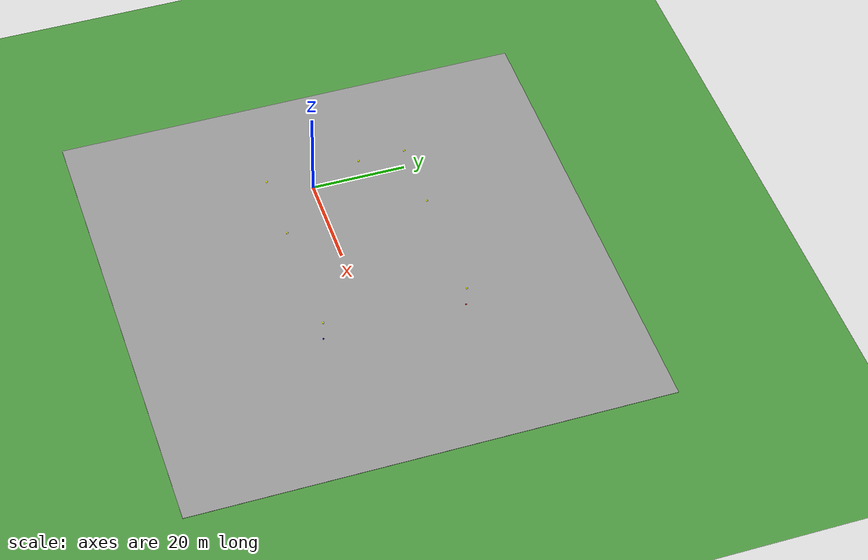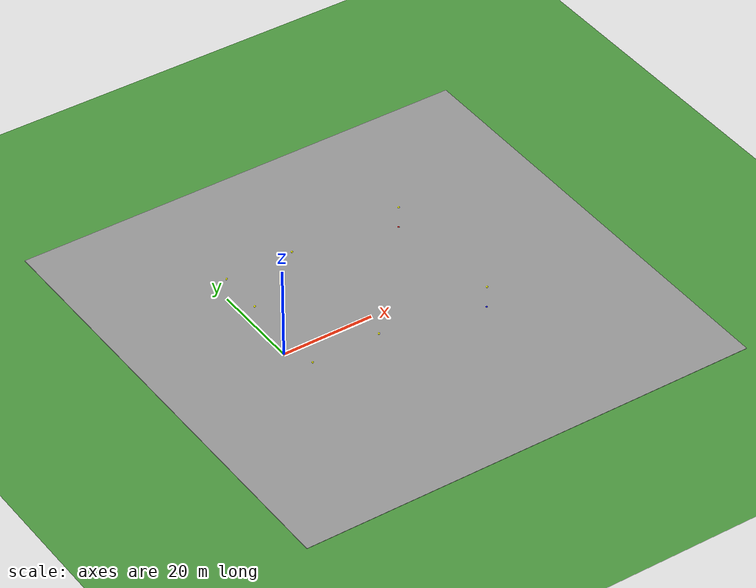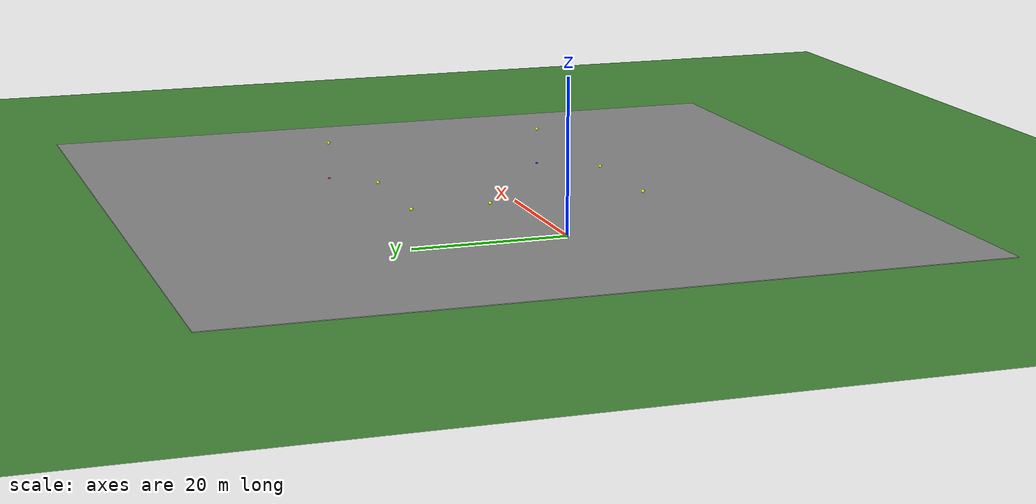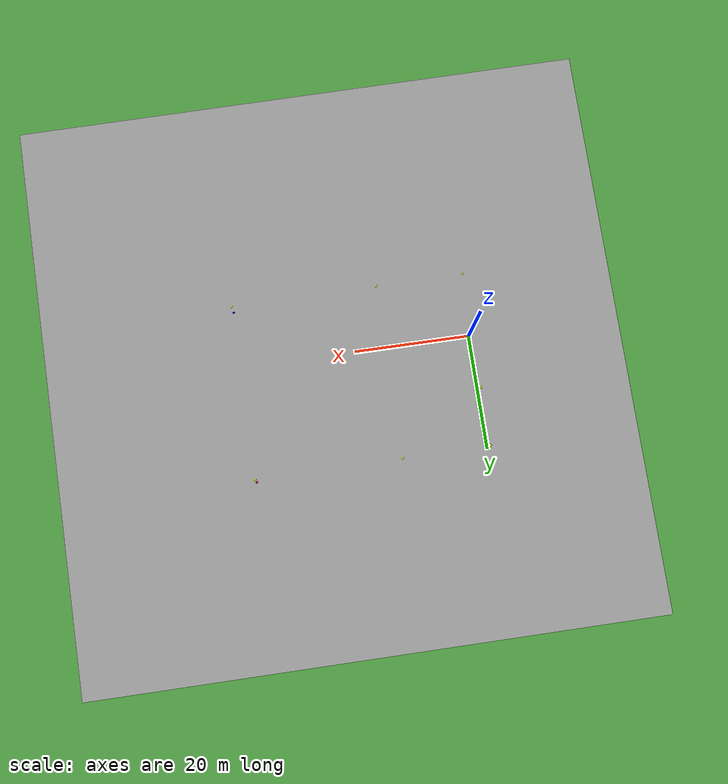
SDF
<sdf version="1.7">
 <world name="default">
  <physics type="ode">
   <ode>
    <solver>
     <type>quick</type>
     <iters>100</iters>
     <sor>1</sor>
     <use_dynamic_moi_rescaling>0</use_dynamic_moi_rescaling>
    </solver>
    <constraints>
     <cfm>0</cfm>
     <erp>0.9</erp>
     <contact_max_correcting_vel>0.1</contact_max_correcting_vel>
     <contact_surface_layer>0</contact_surface_layer>
    </constraints>
   </ode>
   <real_time_update_rate>-1</real_time_update_rate>
   <max_step_size>0.001</max_step_size>
   <real_time_factor>1</real_time_factor>
  </physics>
  <model name="ground_plane">
   <static>1</static>
   <link name="link">
    <collision name="collision">
     <geometry><plane><normal>0 0 1</normal><size>5000 5000</size></plane></geometry>
     <surface><friction><ode><mu>1</mu><mu2>1</mu2></ode></friction></surface>
    </collision>
    <visual name="grass">
     <pose>0 0 -0.1 0 -0 0</pose>
     <cast_shadows>0</cast_shadows>
     <geometry><plane><normal>0 0 1</normal><size>5000 5000</size></plane></geometry>
     <material>
      <script><uri>file://media/materials/scripts/gazebo.material</uri><name>Gazebo/Grass</name></script>
     </material>
    </visual>
   </link>
  </model>
  <light name="sun" type="directional">
   <visualize>false</visualize>
   <pose>0 0 10 0 -0 0</pose>
   <diffuse>0.8 0.8 0.8 1</diffuse>
   <specular>0.2 0.2 0.2 1</specular>
   <attenuation>
    <range>1000</range>
    <constant>0.9</constant>
    <linear>0.01</linear>
    <quadratic>0.001</quadratic>
   </attenuation>
   <direction>-0.5 0.1 -0.9</direction>
   <spot><inner_angle>0</inner_angle><outer_angle>0</outer_angle><falloff>0</falloff></spot>
  </light>
  <gravity>0 0 -9.8</gravity>
  <magnetic_field>6e-06 2.3e-05 -4.2e-05</magnetic_field>
  <atmosphere type="adiabatic"/>
  <scene><ambient>0.4 0.4 0.4 1</ambient><background>0.7 0.7 0.7 1</background><shadows>1</shadows></scene>
  <spherical_coordinates>
   <surface_model>EARTH_WGS84</surface_model>
   <latitude_deg>0</latitude_deg>
   <longitude_deg>0</longitude_deg>
   <elevation>0</elevation>
   <heading_deg>0</heading_deg>
  </spherical_coordinates>
  <model name="ground_plane_0">
   <static>1</static>
   <link name="link">
    <collision name="collision">
     <geometry><plane><normal>0 0 1</normal><size>100 100</size></plane></geometry>
     <surface>
      <contact><collide_bitmask>65535</collide_bitmask></contact>
      <friction><ode><mu>100</mu><mu2>50</mu2></ode></friction>
     </surface>
    </collision>
    <visual name="visual">
     <cast_shadows>0</cast_shadows>
     <geometry><plane><normal>0 0 1</normal><size>100 100</size></plane></geometry>
     <material>
      <script><uri>file://media/materials/scripts/gazebo.material</uri><name>Gazebo/Grey</name></script>
     </material>
    </visual>
   </link>
   <pose>23.7201 2.14936 0 0 -0 0</pose>
  </model>
  <model name="waypoints_0">
   <pose>40 -10 5 0 0 0</pose>
   <link name="link">
    <inertial>
     <mass>1</mass>
     <inertia><ixx>0.1</ixx></inertia>
     <inertia><ixy>0</ixy></inertia>
     <inertia><ixz>0</ixz></inertia>
     <inertia><iyy>0.1</iyy></inertia>
     <inertia><iyz>0</iyz></inertia>
     <inertia><izz>0.1</izz></inertia>
    </inertial>
    <gravity>0</gravity>
    <visual name="visual">
     <geometry><sphere><radius>0.2</radius></sphere></geometry>
     <material>
      <script><name>Gazebo/Grey</name><uri>file://media/materials/scripts/gazebo.material</uri></script>
      <shader type="pixel"><normal_map>__default__</normal_map></shader>
      <ambient>0.3 0.3 0.3 1</ambient>
      <diffuse>1.0 1.0 0.0 1</diffuse>
      <specular>0.01 0.01 0.01 1</specular>
      <emissive>0 0 0 1</emissive>
     </material>
     <transparency>0.05</transparency>
    </visual>
   </link>
   <static>0</static>
  </model>
  <model name="waypoints_1">
   <pose>15 -10 5 0 0 0</pose>
   <link name="link">
    <inertial>
     <mass>1</mass>
     <inertia><ixx>0.1</ixx></inertia>
     <inertia><ixy>0</ixy></inertia>
     <inertia><ixz>0</ixz></inertia>
     <inertia><iyy>0.1</iyy></inertia>
     <inertia><iyz>0</iyz></inertia>
     <inertia><izz>0.1</izz></inertia>
    </inertial>
    <gravity>0</gravity>
    <visual name="visual">
     <geometry><sphere><radius>0.2</radius></sphere></geometry>
     <material>
      <script><name>Gazebo/Grey</name><uri>file://media/materials/scripts/gazebo.material</uri></script>
      <shader type="pixel"><normal_map>__default__</normal_map></shader>
      <ambient>0.3 0.3 0.3 1</ambient>
      <diffuse>1.0 1.0 0.0 1</diffuse>
      <specular>0.01 0.01 0.01 1</specular>
      <emissive>0 0 0 1</emissive>
     </material>
     <transparency>0.05</transparency>
    </visual>
   </link>
   <static>0</static>
  </model>
  <model name="waypoints_2">
   <pose>0 -10 5 0 0 0</pose>
   <link name="link">
    <inertial>
     <mass>1</mass>
     <inertia><ixx>0.1</ixx></inertia>
     <inertia><ixy>0</ixy></inertia>
     <inertia><ixz>0</ixz></inertia>
     <inertia><iyy>0.1</iyy></inertia>
     <inertia><iyz>0</iyz></inertia>
     <inertia><izz>0.1</izz></inertia>
    </inertial>
    <gravity>0</gravity>
    <visual name="visual">
     <geometry><sphere><radius>0.2</radius></sphere></geometry>
     <material>
      <script><name>Gazebo/Grey</name><uri>file://media/materials/scripts/gazebo.material</uri></script>
      <shader type="pixel"><normal_map>__default__</normal_map></shader>
      <ambient>0.3 0.3 0.3 1</ambient>
      <diffuse>1.0 1.0 0.0 1</diffuse>
      <specular>0.01 0.01 0.01 1</specular>
      <emissive>0 0 0 1</emissive>
     </material>
     <transparency>0.05</transparency>
    </visual>
   </link>
   <static>0</static>
  </model>
  <model name="waypoints_3">
   <pose>0 0 5 0 0 0</pose>
   <link name="link">
    <inertial>
     <mass>1</mass>
     <inertia><ixx>0.1</ixx></inertia>
     <inertia><ixy>0</ixy></inertia>
     <inertia><ixz>0</ixz></inertia>
     <inertia><iyy>0.1</iyy></inertia>
     <inertia><iyz>0</iyz></inertia>
     <inertia><izz>0.1</izz></inertia>
    </inertial>
    <gravity>0</gravity>
    <visual name="visual">
     <geometry><sphere><radius>0.2</radius></sphere></geometry>
     <material>
      <script><name>Gazebo/Grey</name><uri>file://media/materials/scripts/gazebo.material</uri></script>
      <shader type="pixel"><normal_map>__default__</normal_map></shader>
      <ambient>0.3 0.3 0.3 1</ambient>
      <diffuse>1.0 1.0 0.0 1</diffuse>
      <specular>0.01 0.01 0.01 1</specular>
      <emissive>0 0 0 1</emissive>
     </material>
     <transparency>0.05</transparency>
    </visual>
   </link>
   <static>0</static>
  </model>
  <model name="waypoints_4">
   <pose>0 10 5 0 0 0</pose>
   <link name="link">
    <inertial>
     <mass>1</mass>
     <inertia><ixx>0.1</ixx></inertia>
     <inertia><ixy>0</ixy></inertia>
     <inertia><ixz>0</ixz></inertia>
     <inertia><iyy>0.1</iyy></inertia>
     <inertia><iyz>0</iyz></inertia>
     <inertia><izz>0.1</izz></inertia>
    </inertial>
    <gravity>0</gravity>
    <visual name="visual">
     <geometry><sphere><radius>0.2</radius></sphere></geometry>
     <material>
      <script><name>Gazebo/Grey</name><uri>file://media/materials/scripts/gazebo.material</uri></script>
      <shader type="pixel"><normal_map>__default__</normal_map></shader>
      <ambient>0.3 0.3 0.3 1</ambient>
      <diffuse>1.0 1.0 0.0 1</diffuse>
      <specular>0.01 0.01 0.01 1</specular>
      <emissive>0 0 0 1</emissive>
     </material>
     <transparency>0.05</transparency>
    </visual>
   </link>
   <static>0</static>
  </model>
  <model name="waypoints_5">
   <pose>40 20 5 0 0 0</pose>
   <link name="link">
    <inertial>
     <mass>1</mass>
     <inertia><ixx>0.1</ixx></inertia>
     <inertia><ixy>0</ixy></inertia>
     <inertia><ixz>0</ixz></inertia>
     <inertia><iyy>0.1</iyy></inertia>
     <inertia><iyz>0</iyz></inertia>
     <inertia><izz>0.1</izz></inertia>
    </inertial>
    <gravity>0</gravity>
    <visual name="visual">
     <geometry><sphere><radius>0.2</radius></sphere></geometry>
     <material>
      <script><name>Gazebo/Grey</name><uri>file://media/materials/scripts/gazebo.material</uri></script>
      <shader type="pixel"><normal_map>__default__</normal_map></shader>
      <ambient>0.3 0.3 0.3 1</ambient>
      <diffuse>1.0 1.0 0.0 1</diffuse>
      <specular>0.01 0.01 0.01 1</specular>
      <emissive>0 0 0 1</emissive>
     </material>
     <transparency>0.05</transparency>
    </visual>
   </link>
   <static>0</static>
  </model>
  <model name="waypoints_6">
   <pose>15 20 5 0 0 0</pose>
   <link name="link">
    <inertial>
     <mass>1</mass>
     <inertia><ixx>0.1</ixx></inertia>
     <inertia><ixy>0</ixy></inertia>
     <inertia><ixz>0</ixz></inertia>
     <inertia><iyy>0.1</iyy></inertia>
     <inertia><iyz>0</iyz></inertia>
     <inertia><izz>0.1</izz></inertia>
    </inertial>
    <gravity>0</gravity>
    <visual name="visual">
     <geometry><sphere><radius>0.2</radius></sphere></geometry>
     <material>
      <script><name>Gazebo/Grey</name><uri>file://media/materials/scripts/gazebo.material</uri></script>
      <shader type="pixel"><normal_map>__default__</normal_map></shader>
      <ambient>0.3 0.3 0.3 1</ambient>
      <diffuse>1.0 1.0 0.0 1</diffuse>
      <specular>0.01 0.01 0.01 1</specular>
      <emissive>0 0 0 1</emissive>
     </material>
     <transparency>0.05</transparency>
    </visual>
   </link>
   <static>0</static>
  </model>
  <model name="waypoints_7">
   <pose>0 20 5 0 0 0</pose>
   <link name="link">
    <inertial>
     <mass>1</mass>
     <inertia><ixx>0.1</ixx></inertia>
     <inertia><ixy>0</ixy></inertia>
     <inertia><ixz>0</ixz></inertia>
     <inertia><iyy>0.1</iyy></inertia>
     <inertia><iyz>0</iyz></inertia>
     <inertia><izz>0.1</izz></inertia>
    </inertial>
    <gravity>0</gravity>
    <visual name="visual">
     <geometry><sphere><radius>0.2</radius></sphere></geometry>
     <material>
      <script><name>Gazebo/Grey</name><uri>file://media/materials/scripts/gazebo.material</uri></script>
      <shader type="pixel"><normal_map>__default__</normal_map></shader>
      <ambient>0.3 0.3 0.3 1</ambient>
      <diffuse>1.0 1.0 0.0 1</diffuse>
      <specular>0.01 0.01 0.01 1</specular>
      <emissive>0 0 0 1</emissive>
     </material>
     <transparency>0.05</transparency>
    </visual>
   </link>
   <static>0</static>
  </model>
  <model name="home1_0">
   <pose>40 -10 0 0 0 0</pose>
   <link name="link">
    <inertial>
     <mass>1</mass>
     <inertia><ixx>0.1</ixx></inertia>
     <inertia><ixy>0</ixy></inertia>
     <inertia><ixz>0</ixz></inertia>
     <inertia><iyy>0.1</iyy></inertia>
     <inertia><iyz>0</iyz></inertia>
     <inertia><izz>0.1</izz></inertia>
    </inertial>
    <gravity>0</gravity>
    <visual name="visual">
     <geometry><sphere><radius>0.2</radius></sphere></geometry>
     <material>
      <script><name>Gazebo/Grey</name><uri>file://media/materials/scripts/gazebo.material</uri></script>
      <shader type="pixel"><normal_map>__default__</normal_map></shader>
      <ambient>0.3 0.3 0.3 1</ambient>
      <diffuse>0.0 0.0 1.0 1</diffuse>
      <specular>0.01 0.01 0.01 1</specular>
      <emissive>0 0 0 1</emissive>
     </material>
     <transparency>0.05</transparency>
    </visual>
   </link>
   <static>0</static>
  </model>
  <model name="home2_0">
   <pose>40 20 0 0 0 0</pose>
   <link name="link">
    <inertial>
     <mass>1</mass>
     <inertia><ixx>0.1</ixx></inertia>
     <inertia><ixy>0</ixy></inertia>
     <inertia><ixz>0</ixz></inertia>
     <inertia><iyy>0.1</iyy></inertia>
     <inertia><iyz>0</iyz></inertia>
     <inertia><izz>0.1</izz></inertia>
    </inertial>
    <gravity>0</gravity>
    <visual name="visual">
     <geometry><sphere><radius>0.2</radius></sphere></geometry>
     <material>
      <script><name>Gazebo/Grey</name><uri>file://media/materials/scripts/gazebo.material</uri></script>
      <shader type="pixel"><normal_map>__default__</normal_map></shader>
      <ambient>0.3 0.3 0.3 1</ambient>
      <diffuse>0.8 0.0 0.0 1</diffuse>
      <specular>0.01 0.01 0.01 1</specular>
      <emissive>0 0 0 1</emissive>
     </material>
     <transparency>0.05</transparency>
    </visual>
   </link>
   <static>0</static>
  </model>
  <model name="target1_0">
   <pose>0 10 0 0 0 0</pose>
   <link name="link">
    <inertial>
     <mass>1</mass>
     <inertia><ixx>0.1</ixx></inertia>
     <inertia><ixy>0</ixy></inertia>
     <inertia><ixz>0</ixz></inertia>
     <inertia><iyy>0.1</iyy></inertia>
     <inertia><iyz>0</iyz></inertia>
     <inertia><izz>0.1</izz></inertia>
    </inertial>
    <gravity>0</gravity>
    <visual name="visual">
     <geometry><sphere><radius>0.2</radius></sphere></geometry>
     <material>
      <script><name>Gazebo/Grey</name><uri>file://media/materials/scripts/gazebo.material</uri></script>
      <shader type="pixel"><normal_map>__default__</normal_map></shader>
      <ambient>0.3 0.3 0.3 1</ambient>
      <diffuse>0.0 0.0 1.0 1</diffuse>
      <specular>0.01 0.01 0.01 1</specular>
      <emissive>0 0 0 1</emissive>
     </material>
     <transparency>0.05</transparency>
    </visual>
   </link>
   <static>0</static>
  </model>
  <model name="target2_0">
   <link name="link">
    <inertial>
     <mass>1</mass>
     <inertia><ixx>0.1</ixx></inertia>
     <inertia><ixy>0</ixy></inertia>
     <inertia><ixz>0</ixz></inertia>
     <inertia><iyy>0.1</iyy></inertia>
     <inertia><iyz>0</iyz></inertia>
     <inertia><izz>0.1</izz></inertia>
    </inertial>
    <gravity>0</gravity>
    <visual name="visual">
     <geometry><sphere><radius>0.2</radius></sphere></geometry>
     <material>
      <script><name>Gazebo/Grey</name><uri>file://media/materials/scripts/gazebo.material</uri></script>
      <shader type="pixel"><normal_map>__default__</normal_map></shader>
      <ambient>0.3 0.3 0.3 1</ambient>
      <diffuse>0.8 0.0 0.0 1</diffuse>
      <specular>0.01 0.01 0.01 1</specular>
      <emissive>0 0 0 1</emissive>
     </material>
     <transparency>0.05</transparency>
    </visual>
   </link>
   <static>0</static>
  </model>
 </world>
</sdf>
